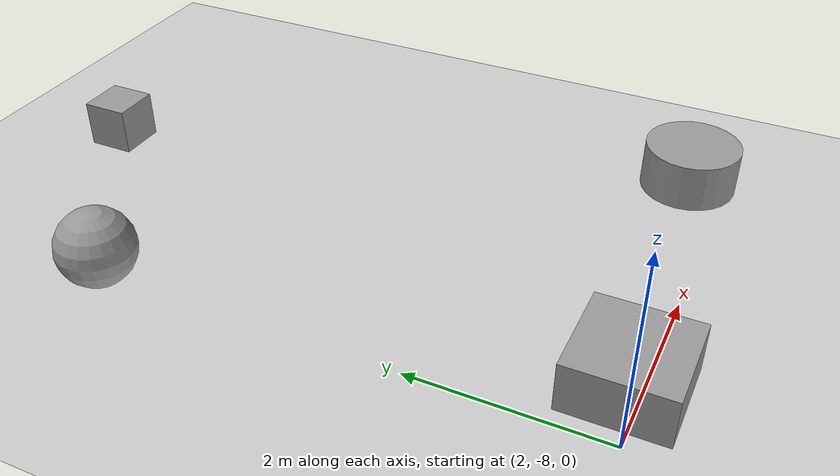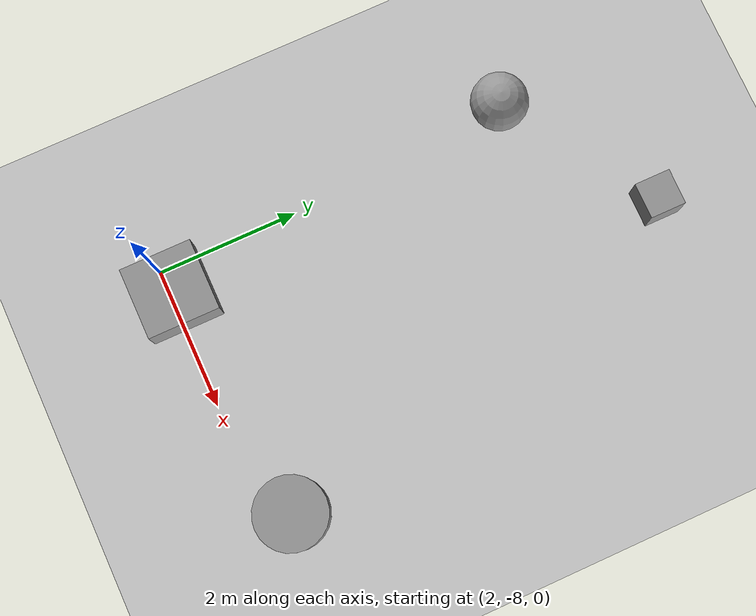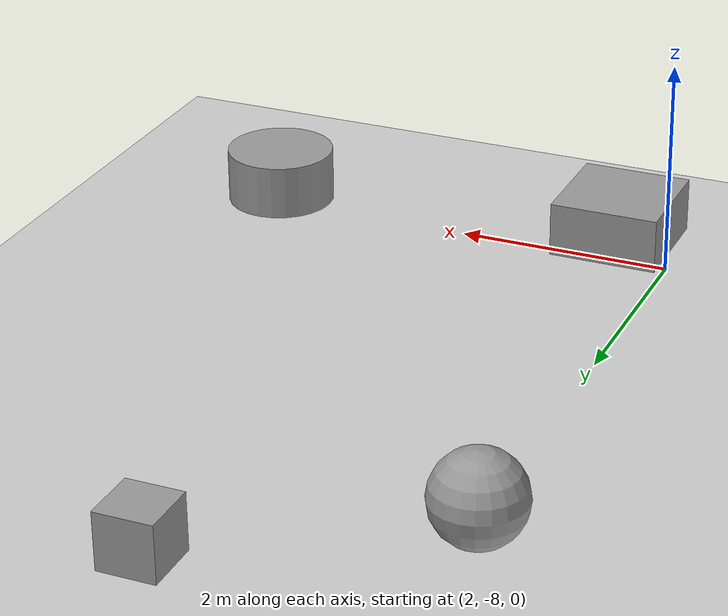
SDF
<sdf version="1.6">
 <world name="default">
  <physics name="default_physics" default="0" type="ode">
   <ode>
    <solver>
     <type>quick</type>
     <iters>100</iters>
     <sor>1</sor>
     <use_dynamic_moi_rescaling>0</use_dynamic_moi_rescaling>
    </solver>
    <constraints>
     <cfm>0</cfm>
     <erp>0.2</erp>
     <contact_max_correcting_vel>0.1</contact_max_correcting_vel>
     <contact_surface_layer>0</contact_surface_layer>
    </constraints>
   </ode>
   <real_time_update_rate>-1</real_time_update_rate>
   <max_step_size>0.001</max_step_size>
   <real_time_factor>1</real_time_factor>
  </physics>
  <gravity>0 0 -9.8</gravity>
  <light name="sun" type="directional">
   <pose>0 0 10 0 -0 0</pose>
   <diffuse>0.8 0.8 0.8 1</diffuse>
   <specular>0.2 0.2 0.2 1</specular>
   <attenuation>
    <range>1000</range>
    <constant>0.9</constant>
    <linear>0.01</linear>
    <quadratic>0.001</quadratic>
   </attenuation>
   <direction>-0.5 0.1 -0.9</direction>
  </light>
  <model name="ground_plane">
   <static>1</static>
   <link name="link">
    <collision name="collision">
     <geometry><plane><normal>0 0 1</normal><size>5000 5000</size></plane></geometry>
     <surface><friction><ode><mu>100</mu><mu2>50</mu2></ode></friction></surface>
    </collision>
    <visual name="runway">
     <pose>0 0 0.005 0 -0 0</pose>
     <cast_shadows>0</cast_shadows>
     <geometry><plane><normal>0 0 1</normal><size>1829 45</size></plane></geometry>
     <material>
      <script><uri>file://media/materials/scripts/gazebo.material</uri><name>Gazebo/Runway</name></script>
     </material>
    </visual>
    <visual name="grass">
     <pose>0 0 -0.1 0 -0 0</pose>
     <cast_shadows>0</cast_shadows>
     <geometry><plane><normal>0 0 1</normal><size>5000 5000</size></plane></geometry>
     <material>
      <script><uri>file://media/materials/scripts/gazebo.material</uri><name>Gazebo/Grass</name></script>
     </material>
    </visual>
   </link>
  </model>
  <magnetic_field>6e-06 2.3e-05 -4.2e-05</magnetic_field>
  <atmosphere type="adiabatic"/>
  <scene><ambient>0.4 0.4 0.4 1</ambient><background>0.7 0.7 0.7 1</background><shadows>1</shadows></scene>
  <audio><device>default</device></audio>
  <spherical_coordinates>
   <surface_model>EARTH_WGS84</surface_model>
   <latitude_deg>0</latitude_deg>
   <longitude_deg>0</longitude_deg>
   <elevation>0</elevation>
   <heading_deg>0</heading_deg>
  </spherical_coordinates>
  <model name="box1">
   <pose>3.92435 -1.5024 0.5 0 -0 0</pose>
   <link name="link">
    <inertial>
     <mass>1</mass>
     <inertia>
      <ixx>0.166667</ixx>
      <ixy>0</ixy>
      <ixz>0</ixz>
      <iyy>0.166667</iyy>
      <iyz>0</iyz>
      <izz>0.166667</izz>
     </inertia>
    </inertial>
    <collision name="collision"><geometry><box><size>0.5 0.5 0.5</size></box></geometry></collision>
    <visual name="visual">
     <geometry><box><size>0.5 0.5 0.5</size></box></geometry>
     <material>
      <script><name>Gazebo/Grey</name><uri>file://media/materials/scripts/gazebo.material</uri></script>
     </material>
    </visual>
   </link>
  </model>
  <model name="cylinder1">
   <pose>5.74044 -7.62584 0.5 0 -0 0</pose>
   <link name="link">
    <inertial>
     <mass>1</mass>
     <inertia><ixx>0.145833</ixx><ixy>0</ixy><ixz>0</ixz><iyy>0.145833</iyy><iyz>0</iyz><izz>0.125</izz></inertia>
    </inertial>
    <collision name="collision">
     <geometry><cylinder><radius>0.5</radius><length>0.5</length></cylinder></geometry>
    </collision>
    <visual name="visual">
     <geometry><cylinder><radius>0.5</radius><length>0.5</length></cylinder></geometry>
     <material>
      <script><name>Gazebo/Grey</name><uri>file://media/materials/scripts/gazebo.material</uri></script>
     </material>
    </visual>
   </link>
  </model>
  <model name="sphere1">
   <pose>1.83817 -2.8558 0.5 0 -0 0</pose>
   <link name="link">
    <inertial>
     <mass>1</mass>
     <inertia><ixx>0.1</ixx><ixy>0</ixy><ixz>0</ixz><iyy>0.1</iyy><iyz>0</iyz><izz>0.1</izz></inertia>
    </inertial>
    <collision name="collision"><geometry><sphere><radius>0.4</radius></sphere></geometry></collision>
    <visual name="visual">
     <geometry><sphere><radius>0.4</radius></sphere></geometry>
     <material>
      <script><name>Gazebo/Grey</name><uri>file://media/materials/scripts/gazebo.material</uri></script>
     </material>
    </visual>
   </link>
  </model>
  <model name="box2">
   <pose>2.42908 -7.9082 0.5 0 -0 0</pose>
   <link name="link">
    <inertial>
     <mass>1</mass>
     <inertia>
      <ixx>0.166667</ixx>
      <ixy>0</ixy>
      <ixz>0</ixz>
      <iyy>0.166667</iyy>
      <iyz>0</iyz>
      <izz>0.166667</izz>
     </inertia>
    </inertial>
    <collision name="collision"><geometry><box><size>1 1 0.5</size></box></geometry></collision>
    <visual name="visual">
     <geometry><box><size>1 1 0.5</size></box></geometry>
     <material>
      <script><name>Gazebo/Grey</name><uri>file://media/materials/scripts/gazebo.material</uri></script>
     </material>
    </visual>
   </link>
  </model>
 </world>
</sdf>
